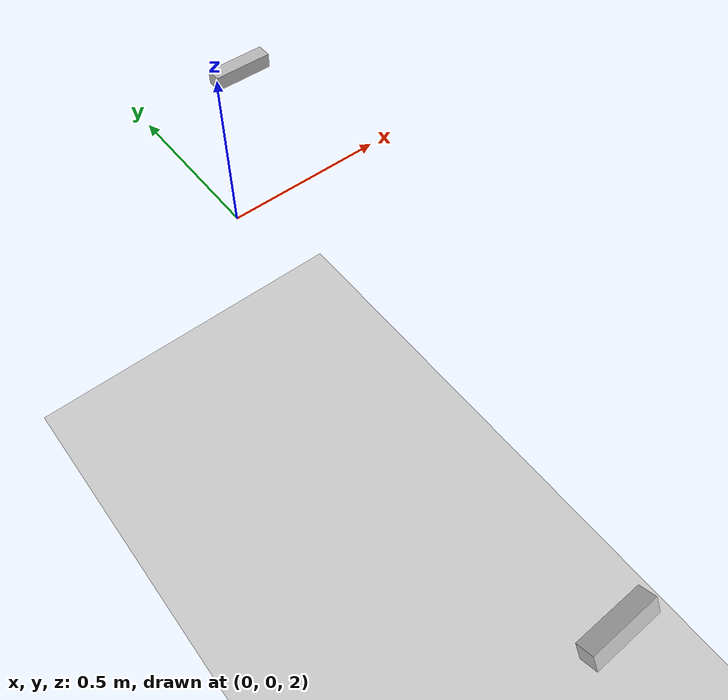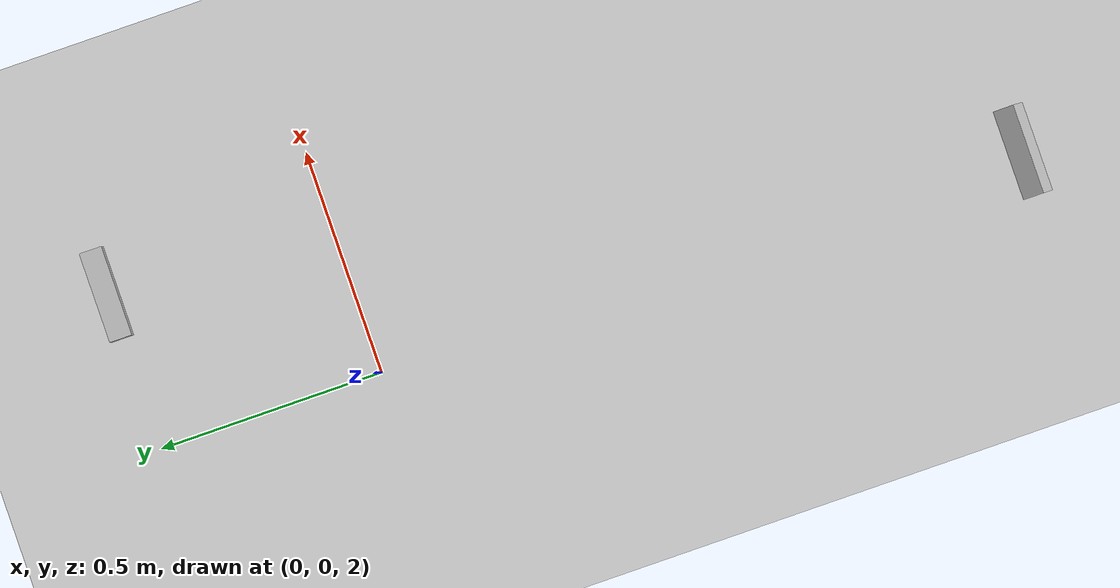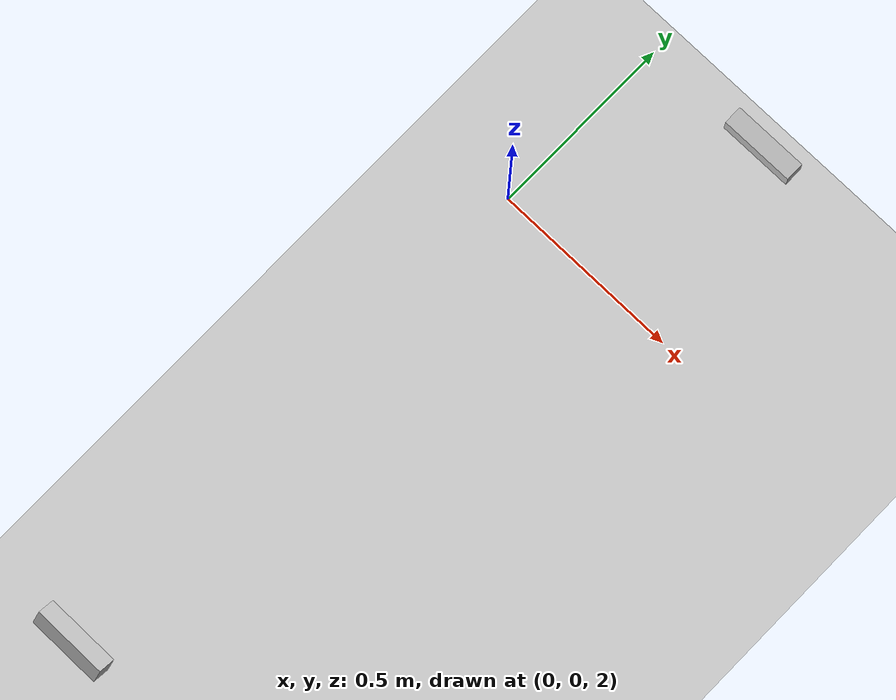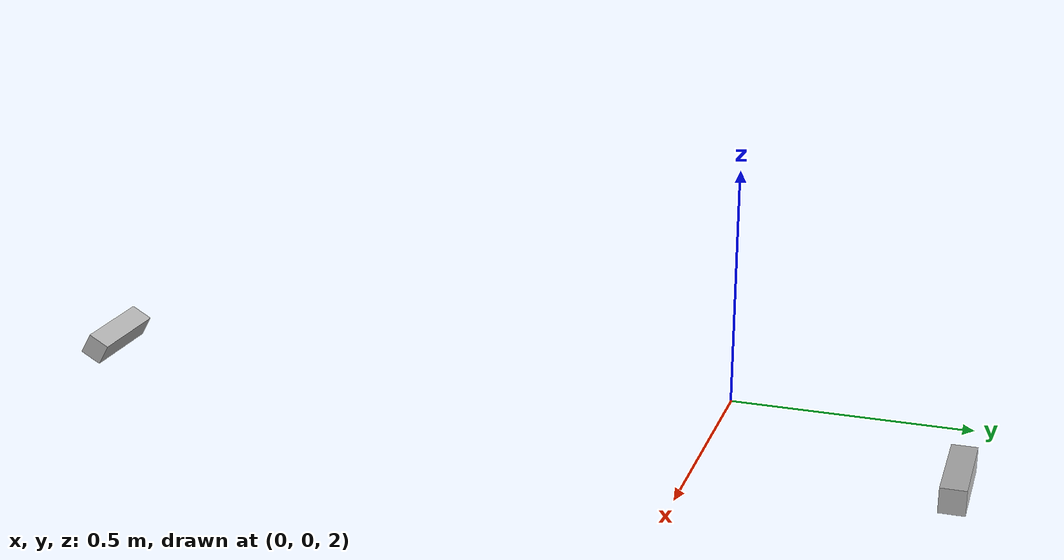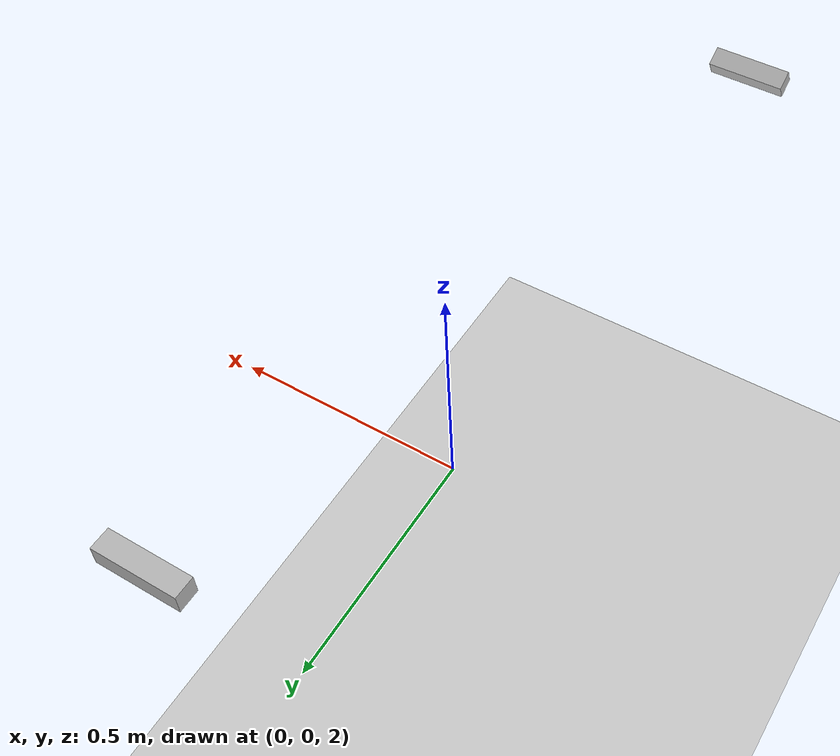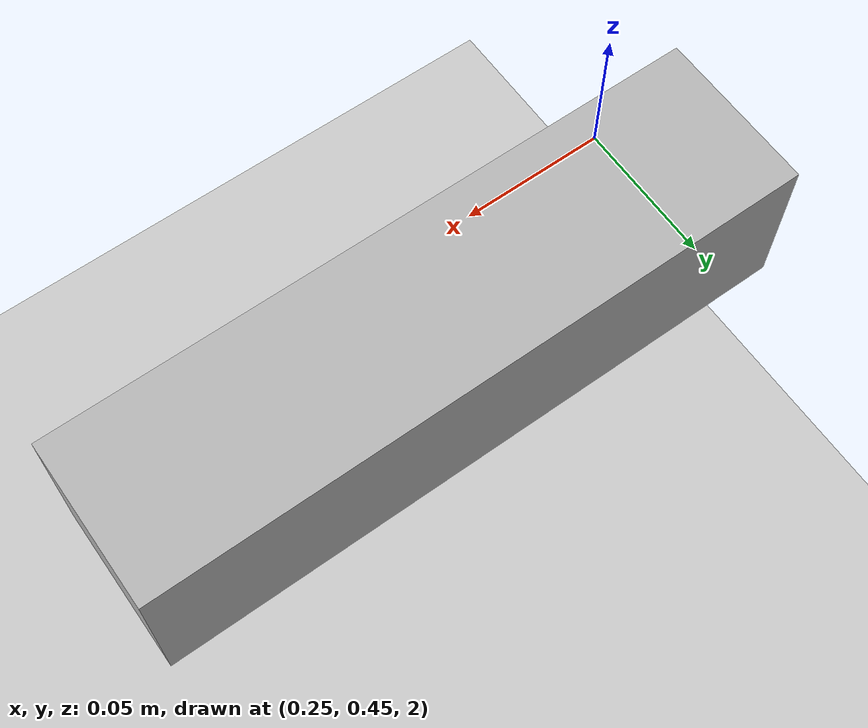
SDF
<?xml version="1.0"?>
<sdf version="1.6">
  <world name="default">
    <plugin filename="gz-sim-physics-system" name="gz::sim::systems::Physics">
    <engine>
      <filename>gz-physics-dartsim-plugin</filename>
    </engine>
    </plugin>
    <plugin
      filename="gz-sim-user-commands-system"
      name="gz::sim::systems::UserCommands">
    </plugin>
    <plugin
      filename="gz-sim-scene-broadcaster-system"
      name="gz::sim::systems::SceneBroadcaster">
    </plugin>
    <plugin
      filename="gz-sim-sensors-system"
      name="gz::sim::systems::Sensors">
      <render_engine>ogre2</render_engine>
    </plugin>

    <scene>
      <ambient>1.0 1.0 1.0</ambient>
      <background>0.8 0.8 0.8</background>
      <grid>true</grid>
    </scene>

    <gravity>0.0 0.0 -9.8</gravity>

    <light type="directional" name="sun">
      <cast_shadows>false</cast_shadows>
      <pose>0 0 10 0 0 0</pose>
      <diffuse>0.8 0.8 0.8 1</diffuse>
      <specular>0.8 0.8 0.8 1</specular>
      <attenuation>
        <range>1000</range>
        <constant>0.9</constant>
        <linear>0.01</linear>
        <quadratic>0.001</quadratic>
      </attenuation>
      <direction>-0.5 0.1 -0.9</direction>
    </light>

    <model name="ground_plane">
      <static>true</static>
      <link name="link">
        <collision name="collision">
          <geometry>
            <plane>
              <normal>0 0 1</normal>
              <size>100 100</size>
            </plane>
          </geometry>
        </collision>
        <visual name="visual">
          <geometry>
            <plane>
              <normal>0 0 1</normal>
              <size>100 100</size>
            </plane>
          </geometry>
          <material>
            <ambient>0.8 0.8 0.8 1</ambient>
            <diffuse>0.8 0.8 0.8 1</diffuse>
            <specular>0.8 0.8 0.8 1</specular>
          </material>
        </visual>
      </link>
    </model>

    <model name="side_camera">
      <!-- 30 degree tilt -->
      <pose>0 -1.5 2 0 0.52 1.57</pose>
      <link name="camera_side_link">
        <gravity>false</gravity>
        <pose>0.05 0 0 0 0 0</pose>
        <inertial>
          <mass>0.1</mass>
          <inertia>
            <ixx>0.000166667</ixx>
            <iyy>0.000166667</iyy>
            <izz>0.000166667</izz>
          </inertia>
        </inertial>
        <collision name="collision">
          <geometry>
            <box>
              <size>0.05 0.2 0.05</size>
            </box>
          </geometry>
        </collision>
        <visual name="visual">
          <geometry>
            <box>
              <size>0.05 0.2 0.05</size>
            </box>
          </geometry>
        </visual>
        <sensor name="camera" type="camera">
          <camera>
            <horizontal_fov>1.25</horizontal_fov>
            <image>
              <width>1280</width>
              <height>720</height>
              <format>R8G8B8</format>
            </image>
            <noise>
              <type>gaussian</type>
              <mean>0.0</mean>
              <stddev>0.007</stddev>
            </noise>
            <clip>
              <near>0.1</near>
              <far>20</far>
            </clip>
            <optical_frame_id>camera_side_link</optical_frame_id>
          </camera>
          <always_on>1</always_on>
          <update_rate>50</update_rate>
          <visualize>true</visualize>
          <topic>camera_side/image</topic>
        </sensor>
      </link>
    </model>

    <include>
      <uri>model://camera</uri>
      <static>true</static>
    </include>
  </world>
</sdf>

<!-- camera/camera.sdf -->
<sdf version="1.5">
    <model name="camera">
        <pose>0.35 0.5 2.1 0 1.57 -1.57</pose>
        <link name="camera_link">
            <gravity>false</gravity>
            <pose>0.05 0 0 0 0 0</pose>
            <inertial>
                <mass>0.1</mass>
                <inertia>
                    <ixx>0.000166667</ixx>
                    <iyy>0.000166667</iyy>
                    <izz>0.000166667</izz>
                </inertia>
            </inertial>
            <collision name="collision">
                <geometry>
                    <box>
                        <size>0.05 0.2 0.05</size>
                    </box>
                </geometry>
            </collision>
            <visual name="visual">
                <geometry>
                    <box>
                        <size>0.05 0.2 0.05</size>
                    </box>
                </geometry>
            </visual>
            <sensor name="camera" type="camera">
                <camera>
                    <horizontal_fov>1.25</horizontal_fov>
                    <image>
                        <width>1280</width>
                        <height>720</height>
                        <format>R8G8B8</format>
                    </image>
                    <noise>
                        <type>gaussian</type>
                        <mean>0.0</mean>
                        <stddev>0.007</stddev>
                    </noise>
                    <clip>
                        <near>0.1</near>
                        <far>20</far>
                    </clip>
                    <optical_frame_id>camera_link</optical_frame_id>
                </camera>
                <always_on>1</always_on>
                <update_rate>50</update_rate>
                <visualize>true</visualize>
                <topic>camera/image</topic>
            </sensor>
        </link>
    </model>

</sdf>
